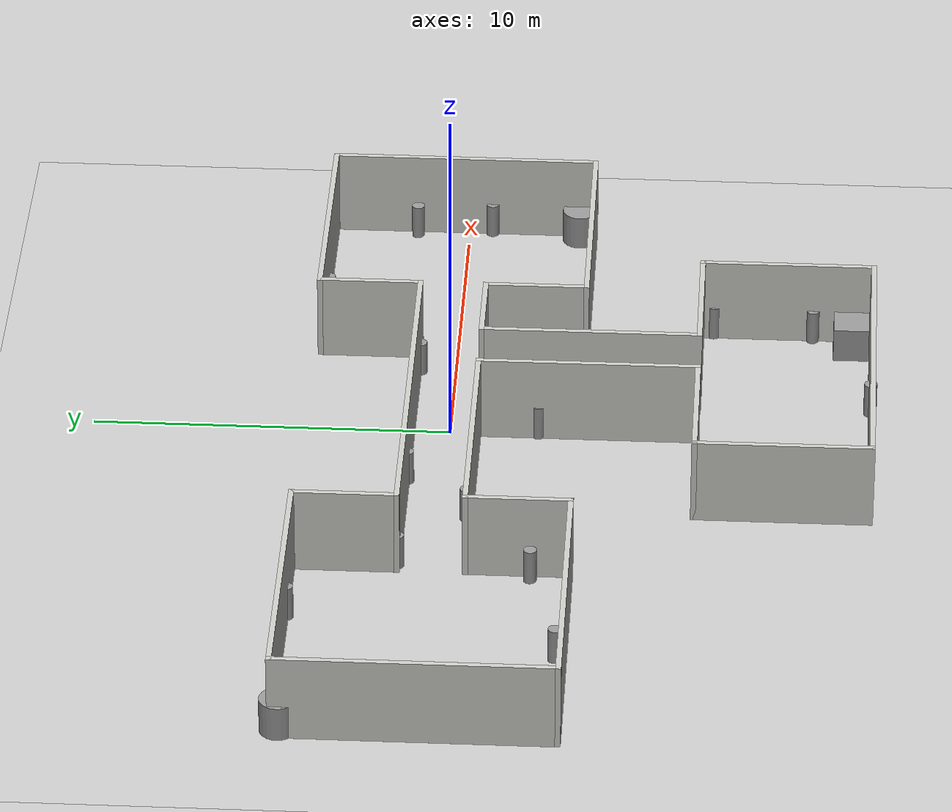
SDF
<sdf version="1.7">
 <world name="default">
  <light name="sun" type="directional">
   <pose>0 0 10 0 -0 0</pose>
   <diffuse>0.8 0.8 0.8 1</diffuse>
   <specular>0.2 0.2 0.2 1</specular>
   <attenuation>
    <range>1000</range>
    <constant>0.9</constant>
    <linear>0.01</linear>
    <quadratic>0.001</quadratic>
   </attenuation>
   <direction>-0.5 0.1 -0.9</direction>
   <spot><inner_angle>0</inner_angle><outer_angle>0</outer_angle><falloff>0</falloff></spot>
  </light>
  <model name="ground_plane">
   <static>1</static>
   <link name="link">
    <collision name="collision">
     <geometry><plane><normal>0 0 1</normal><size>100 100</size></plane></geometry>
     <surface><friction><ode><mu>100</mu><mu2>50</mu2></ode></friction></surface>
    </collision>
    <visual name="visual">
     <cast_shadows>0</cast_shadows>
     <geometry><plane><normal>0 0 1</normal><size>100 100</size></plane></geometry>
     <material>
      <script><uri>file://media/materials/scripts/gazebo.material</uri><name>Gazebo/Grey</name></script>
     </material>
    </visual>
   </link>
  </model>
  <gravity>0 0 -9.8</gravity>
  <magnetic_field>6e-06 2.3e-05 -4.2e-05</magnetic_field>
  <atmosphere type="adiabatic"/>
  <physics type="ode">
   <max_step_size>0.001</max_step_size>
   <real_time_factor>1</real_time_factor>
   <real_time_update_rate>1000</real_time_update_rate>
  </physics>
  <scene><ambient>0.4 0.4 0.4 1</ambient><background>0.7 0.7 0.7 1</background><shadows>1</shadows></scene>
  <audio><device>default</device></audio>
  <spherical_coordinates>
   <surface_model>EARTH_WGS84</surface_model>
   <latitude_deg>0</latitude_deg>
   <longitude_deg>0</longitude_deg>
   <elevation>0</elevation>
   <heading_deg>0</heading_deg>
  </spherical_coordinates>
  <model name="Prueba_1">
   <pose>-1.99357 -3.9035 0 0 -0 0</pose>
   <link name="Wall_12">
    <collision name="Wall_12_Collision">
     <geometry><box><size>2.5 0.15 2.5</size></box></geometry>
     <pose>0 0 1.25 0 -0 0</pose>
    </collision>
    <visual name="Wall_12_Visual">
     <pose>0 0 1.25 0 -0 0</pose>
     <geometry><box><size>2.5 0.15 2.5</size></box></geometry>
     <material>
      <script><uri>file://media/materials/scripts/gazebo.material</uri><name>Gazebo/CeilingTiled</name></script>
      <ambient>0.207843 0.517647 0.894118 1</ambient>
     </material>
     <meta><layer>0</layer></meta>
    </visual>
    <pose>4.75 3.125 0 0 -0 3.14159</pose>
   </link>
   <link name="Wall_14">
    <collision name="Wall_14_Collision">
     <geometry><box><size>7 0.15 2.5</size></box></geometry>
     <pose>0 0 1.25 0 -0 0</pose>
    </collision>
    <visual name="Wall_14_Visual">
     <pose>0 0 1.25 0 -0 0</pose>
     <geometry><box><size>7 0.15 2.5</size></box></geometry>
     <material>
      <script><uri>file://media/materials/scripts/gazebo.material</uri><name>Gazebo/CeilingTiled</name></script>
      <ambient>0.207843 0.517647 0.894118 1</ambient>
     </material>
     <meta><layer>0</layer></meta>
    </visual>
    <pose>-1.5 3.125 0 0 -0 3.14159</pose>
   </link>
   <link name="Wall_30">
    <collision name="Wall_30_Collision">
     <geometry><box><size>3 0.15 2.5</size></box></geometry>
     <pose>0 0 1.25 0 -0 0</pose>
    </collision>
    <visual name="Wall_30_Visual">
     <pose>0 0 1.25 0 -0 0</pose>
     <geometry><box><size>3 0.15 2.5</size></box></geometry>
     <material>
      <script><uri>file://media/materials/scripts/gazebo.material</uri><name>Gazebo/CeilingTiled</name></script>
      <ambient>0.207843 0.517647 0.894118 1</ambient>
     </material>
     <meta><layer>0</layer></meta>
    </visual>
    <pose>-4.925 1.7 0 0 -0 -1.5708</pose>
   </link>
   <link name="Wall_32">
    <collision name="Wall_32_Collision">
     <geometry><box><size>3 0.15 2.5</size></box></geometry>
     <pose>0 0 1.25 0 -0 0</pose>
    </collision>
    <visual name="Wall_32_Visual">
     <pose>0 0 1.25 0 -0 0</pose>
     <geometry><box><size>3 0.15 2.5</size></box></geometry>
     <material>
      <script><uri>file://media/materials/scripts/gazebo.material</uri><name>Gazebo/CeilingTiled</name></script>
      <ambient>0.207843 0.517647 0.894118 1</ambient>
     </material>
     <meta><layer>0</layer></meta>
    </visual>
    <pose>-4.925 6.4 0 0 -0 1.5708</pose>
   </link>
   <link name="Wall_34">
    <collision name="Wall_34_Collision">
     <geometry><box><size>8 0.15 2.5</size></box></geometry>
     <pose>0 0 1.25 0 -0 0</pose>
    </collision>
    <visual name="Wall_34_Visual">
     <pose>0 0 1.25 0 -0 0</pose>
     <geometry><box><size>8 0.15 2.5</size></box></geometry>
     <material>
      <script><uri>file://media/materials/scripts/gazebo.material</uri><name>Gazebo/CeilingTiled</name></script>
      <ambient>0.207843 0.517647 0.894118 1</ambient>
     </material>
     <meta><layer>0</layer></meta>
    </visual>
    <pose>-8.85 7.825 0 0 -0 3.14159</pose>
   </link>
   <link name="Wall_36">
    <collision name="Wall_36_Collision">
     <geometry><box><size>8 0.15 2.5</size></box></geometry>
     <pose>0 0 1.25 0 -0 0</pose>
    </collision>
    <visual name="Wall_36_Visual">
     <pose>0 0 1.25 0 -0 0</pose>
     <geometry><box><size>8 0.15 2.5</size></box></geometry>
     <material>
      <script><uri>file://media/materials/scripts/gazebo.material</uri><name>Gazebo/CeilingTiled</name></script>
      <ambient>0.207843 0.517647 0.894118 1</ambient>
     </material>
     <meta><layer>0</layer></meta>
    </visual>
    <pose>-8.85 0.275 0 0 -0 3.14159</pose>
   </link>
   <link name="Wall_37">
    <collision name="Wall_37_Collision">
     <geometry><box><size>7.7 0.15 2.5</size></box></geometry>
     <pose>0 0 1.25 0 -0 0</pose>
    </collision>
    <visual name="Wall_37_Visual">
     <pose>0 0 1.25 0 -0 0</pose>
     <geometry><box><size>7.7 0.15 2.5</size></box></geometry>
     <material>
      <script><uri>file://media/materials/scripts/gazebo.material</uri><name>Gazebo/CeilingTiled</name></script>
      <ambient>0.207843 0.517647 0.894118 1</ambient>
     </material>
     <meta><layer>0</layer></meta>
    </visual>
    <pose>-12.775 4.05 0 0 -0 1.5708</pose>
   </link>
   <link name="Wall_41">
    <collision name="Wall_41_Collision">
     <geometry><box><size>3 0.15 2.5</size></box></geometry>
     <pose>0 0 1.25 0 -0 0</pose>
    </collision>
    <visual name="Wall_41_Visual">
     <pose>0 0 1.25 0 -0 0</pose>
     <geometry><box><size>3 0.15 2.5</size></box></geometry>
     <material>
      <script><uri>file://media/materials/scripts/gazebo.material</uri><name>Gazebo/CeilingTiled</name></script>
      <ambient>0.207843 0.517647 0.894118 1</ambient>
     </material>
     <meta><layer>0</layer></meta>
    </visual>
    <pose>5.925 1.7 0 0 -0 1.5708</pose>
   </link>
   <link name="Wall_44">
    <collision name="Wall_44_Collision">
     <geometry><box><size>3 0.15 2.5</size></box></geometry>
     <pose>0 0 1.25 0 -0 0</pose>
    </collision>
    <visual name="Wall_44_Visual">
     <pose>0 0 1.25 0 -0 0</pose>
     <geometry><box><size>3 0.15 2.5</size></box></geometry>
     <material>
      <script><uri>file://media/materials/scripts/gazebo.material</uri><name>Gazebo/CeilingTiled</name></script>
      <ambient>0.207843 0.517647 0.894118 1</ambient>
     </material>
     <meta><layer>0</layer></meta>
    </visual>
    <pose>5.925 6.4 0 0 -0 -1.5708</pose>
   </link>
   <link name="Wall_46">
    <collision name="Wall_46_Collision">
     <geometry><box><size>7 0.15 2.5</size></box></geometry>
     <pose>0 0 1.25 0 -0 0</pose>
    </collision>
    <visual name="Wall_46_Visual">
     <pose>0 0 1.25 0 -0 0</pose>
     <geometry><box><size>7 0.15 2.5</size></box></geometry>
     <material>
      <script><uri>file://media/materials/scripts/gazebo.material</uri><name>Gazebo/CeilingTiled</name></script>
      <ambient>0.207843 0.517647 0.894118 1</ambient>
     </material>
     <meta><layer>0</layer></meta>
    </visual>
    <pose>9.35 7.825 0 0 -0 0</pose>
   </link>
   <link name="Wall_49">
    <collision name="Wall_49_Collision">
     <geometry><box><size>7 0.15 2.5</size></box></geometry>
     <pose>0 0 1.25 0 -0 0</pose>
    </collision>
    <visual name="Wall_49_Visual">
     <pose>0 0 1.25 0 -0 0</pose>
     <geometry><box><size>7 0.15 2.5</size></box></geometry>
     <material>
      <script><uri>file://media/materials/scripts/gazebo.material</uri><name>Gazebo/CeilingTiled</name></script>
      <ambient>0.207843 0.517647 0.894118 1</ambient>
     </material>
     <meta><layer>0</layer></meta>
    </visual>
    <pose>9.35 0.275 0 0 -0 0</pose>
   </link>
   <link name="Wall_50">
    <collision name="Wall_50_Collision">
     <geometry><box><size>7.7 0.15 2.5</size></box></geometry>
     <pose>0 0 1.25 0 -0 0</pose>
    </collision>
    <visual name="Wall_50_Visual">
     <pose>0 0 1.25 0 -0 0</pose>
     <geometry><box><size>7.7 0.15 2.5</size></box></geometry>
     <material>
      <script><uri>file://media/materials/scripts/gazebo.material</uri><name>Gazebo/CeilingTiled</name></script>
      <ambient>0.207843 0.517647 0.894118 1</ambient>
     </material>
     <meta><layer>0</layer></meta>
    </visual>
    <pose>12.775 4.05 0 0 -0 1.5708</pose>
   </link>
   <link name="Wall_52">
    <collision name="Wall_52_Collision">
     <geometry><box><size>6.25 0.15 2.5</size></box></geometry>
     <pose>0 0 1.25 0 -0 0</pose>
    </collision>
    <visual name="Wall_52_Visual">
     <pose>0 0 1.25 0 -0 0</pose>
     <geometry><box><size>6.25 0.15 2.5</size></box></geometry>
     <material>
      <script><uri>file://media/materials/scripts/gazebo.material</uri><name>Gazebo/CeilingTiled</name></script>
      <ambient>0.207843 0.517647 0.894118 1</ambient>
     </material>
     <meta><layer>0</layer></meta>
    </visual>
    <pose>1.925 0.075 0 0 -0 -1.5708</pose>
   </link>
   <link name="Wall_54">
    <collision name="Wall_54_Collision">
     <geometry><box><size>6.25 0.15 2.5</size></box></geometry>
     <pose>0 0 1.25 0 -0 0</pose>
    </collision>
    <visual name="Wall_54_Visual">
     <pose>0 0 1.25 0 -0 0</pose>
     <geometry><box><size>6.25 0.15 2.5</size></box></geometry>
     <material>
      <script><uri>file://media/materials/scripts/gazebo.material</uri><name>Gazebo/CeilingTiled</name></script>
      <ambient>0.207843 0.517647 0.894118 1</ambient>
     </material>
     <meta><layer>0</layer></meta>
    </visual>
    <pose>3.575 0.075 0 0 -0 -1.5708</pose>
   </link>
   <link name="Wall_56">
    <collision name="Wall_56_Collision">
     <geometry><box><size>4 0.15 2.5</size></box></geometry>
     <pose>0 0 1.25 0 -0 0</pose>
    </collision>
    <visual name="Wall_56_Visual">
     <pose>0 0 1.25 0 -0 0</pose>
     <geometry><box><size>4 0.15 2.5</size></box></geometry>
     <material>
      <script><uri>file://media/materials/scripts/gazebo.material</uri><name>Gazebo/CeilingTiled</name></script>
      <ambient>0.207843 0.517647 0.894118 1</ambient>
     </material>
     <meta><layer>0</layer></meta>
    </visual>
    <pose>0 -2.975 0 0 -0 3.14159</pose>
   </link>
   <link name="Wall_58">
    <collision name="Wall_58_Collision">
     <geometry><box><size>4 0.15 2.5</size></box></geometry>
     <pose>0 0 1.25 0 -0 0</pose>
    </collision>
    <visual name="Wall_58_Visual">
     <pose>0 0 1.25 0 -0 0</pose>
     <geometry><box><size>4 0.15 2.5</size></box></geometry>
     <material>
      <script><uri>file://media/materials/scripts/gazebo.material</uri><name>Gazebo/CeilingTiled</name></script>
      <ambient>0.207843 0.517647 0.894118 1</ambient>
     </material>
     <meta><layer>0</layer></meta>
    </visual>
    <pose>5.5 -2.975 0 0 -0 0</pose>
   </link>
   <link name="Wall_62">
    <collision name="Wall_62_Collision">
     <geometry><box><size>5 0.15 2.5</size></box></geometry>
     <pose>0 0 1.25 0 -0 0</pose>
    </collision>
    <visual name="Wall_62_Visual">
     <pose>0 0 1.25 0 -0 0</pose>
     <geometry><box><size>5 0.15 2.5</size></box></geometry>
     <material>
      <script><uri>file://media/materials/scripts/gazebo.material</uri><name>Gazebo/CeilingTiled</name></script>
      <ambient>0.207843 0.517647 0.894118 1</ambient>
     </material>
     <meta><layer>0</layer></meta>
    </visual>
    <pose>-1.925 -5.4 0 0 -0 -1.5708</pose>
   </link>
   <link name="Wall_63">
    <collision name="Wall_63_Collision">
     <geometry><box><size>9.5 0.15 2.5</size></box></geometry>
     <pose>0 0 1.25 0 -0 0</pose>
    </collision>
    <visual name="Wall_63_Visual">
     <pose>0 0 1.25 0 -0 0</pose>
     <geometry><box><size>9.5 0.15 2.5</size></box></geometry>
     <material>
      <script><uri>file://media/materials/scripts/gazebo.material</uri><name>Gazebo/CeilingTiled</name></script>
      <ambient>0.207843 0.517647 0.894118 1</ambient>
     </material>
     <meta><layer>0</layer></meta>
    </visual>
    <pose>2.75 -7.825 0 0 -0 0</pose>
   </link>
   <link name="Wall_64">
    <collision name="Wall_64_Collision">
     <geometry><box><size>5 0.15 2.5</size></box></geometry>
     <pose>0 0 1.25 0 -0 0</pose>
    </collision>
    <visual name="Wall_64_Visual">
     <pose>0 0 1.25 0 -0 0</pose>
     <geometry><box><size>5 0.15 2.5</size></box></geometry>
     <material>
      <script><uri>file://media/materials/scripts/gazebo.material</uri><name>Gazebo/CeilingTiled</name></script>
      <ambient>0.207843 0.517647 0.894118 1</ambient>
     </material>
     <meta><layer>0</layer></meta>
    </visual>
    <pose>7.425 -5.4 0 0 -0 1.5708</pose>
   </link>
   <link name="Wall_9">
    <collision name="Wall_9_Collision">
     <geometry><box><size>11 0.15 2.5</size></box></geometry>
     <pose>0 0 1.25 0 -0 0</pose>
    </collision>
    <visual name="Wall_9_Visual">
     <pose>0 0 1.25 0 -0 0</pose>
     <geometry><box><size>11 0.15 2.5</size></box></geometry>
     <material>
      <script><uri>file://media/materials/scripts/gazebo.material</uri><name>Gazebo/CeilingTiled</name></script>
      <ambient>0.207843 0.517647 0.894118 1</ambient>
     </material>
     <meta><layer>0</layer></meta>
    </visual>
    <pose>0.5 4.975 0 0 -0 0</pose>
   </link>
   <static>1</static>
  </model>
  <model name="unit_cylinder">
   <pose>1.50224 -5.64337 0.499991 0 -0 -0.001384</pose>
   <link name="link">
    <inertial>
     <mass>1</mass>
     <inertia><ixx>0.145833</ixx><ixy>0</ixy><ixz>0</ixz><iyy>0.145833</iyy><iyz>0</iyz><izz>0.125</izz></inertia>
    </inertial>
    <collision name="collision">
     <geometry><cylinder><radius>0.179113</radius><length>1</length></cylinder></geometry>
    </collision>
    <visual name="visual">
     <geometry><cylinder><radius>0.179113</radius><length>1</length></cylinder></geometry>
     <material>
      <script><name>Gazebo/Grey</name><uri>file://media/materials/scripts/gazebo.material</uri></script>
     </material>
    </visual>
   </link>
  </model>
  <model name="unit_cylinder_clone">
   <pose>-0.022547 -2.46096 0.499999 0 0 -0.001389</pose>
   <link name="link">
    <inertial>
     <mass>1</mass>
     <inertia><ixx>0.145833</ixx><ixy>0</ixy><ixz>0</ixz><iyy>0.145833</iyy><iyz>0</iyz><izz>0.125</izz></inertia>
    </inertial>
    <collision name="collision">
     <geometry><cylinder><radius>0.179113</radius><length>1</length></cylinder></geometry>
    </collision>
    <visual name="visual">
     <geometry><cylinder><radius>0.179113</radius><length>1</length></cylinder></geometry>
     <material>
      <script><name>Gazebo/Grey</name><uri>file://media/materials/scripts/gazebo.material</uri></script>
     </material>
    </visual>
   </link>
  </model>
  <model name="unit_cylinder_clone_0">
   <pose>0.185546 -4.44262 0.5 0 0 -0.001384</pose>
   <link name="link">
    <inertial>
     <mass>1</mass>
     <inertia><ixx>0.145833</ixx><ixy>0</ixy><ixz>0</ixz><iyy>0.145833</iyy><iyz>0</iyz><izz>0.125</izz></inertia>
    </inertial>
    <collision name="collision">
     <geometry><cylinder><radius>0.179113</radius><length>1</length></cylinder></geometry>
    </collision>
    <visual name="visual">
     <geometry><cylinder><radius>0.179113</radius><length>1</length></cylinder></geometry>
     <material>
      <script><name>Gazebo/Grey</name><uri>file://media/materials/scripts/gazebo.material</uri></script>
     </material>
    </visual>
   </link>
  </model>
  <model name="unit_box">
   <pose>-3.33928 -11.1518 0.499995 -1e-05 -0 0.003229</pose>
   <link name="link">
    <inertial>
     <mass>1</mass>
     <inertia>
      <ixx>0.166667</ixx>
      <ixy>0</ixy>
      <ixz>0</ixz>
      <iyy>0.166667</iyy>
      <iyz>0</iyz>
      <izz>0.166667</izz>
     </inertia>
    </inertial>
    <collision name="collision"><geometry><box><size>1 1 1</size></box></geometry></collision>
    <visual name="visual">
     <geometry><box><size>1 1 1</size></box></geometry>
     <material>
      <script><name>Gazebo/Grey</name><uri>file://media/materials/scripts/gazebo.material</uri></script>
     </material>
    </visual>
   </link>
  </model>
  <model name="unit_cylinder_clone_0_clone">
   <pose>3.0973 1.01354 0.499991 0 -0 -0.001383</pose>
   <link name="link">
    <inertial>
     <mass>1</mass>
     <inertia><ixx>0.145833</ixx><ixy>0</ixy><ixz>0</ixz><iyy>0.145833</iyy><iyz>0</iyz><izz>0.125</izz></inertia>
    </inertial>
    <collision name="collision">
     <geometry><cylinder><radius>0.179113</radius><length>1</length></cylinder></geometry>
    </collision>
    <visual name="visual">
     <geometry><cylinder><radius>0.179113</radius><length>1</length></cylinder></geometry>
     <material>
      <script><name>Gazebo/Grey</name><uri>file://media/materials/scripts/gazebo.material</uri></script>
     </material>
    </visual>
   </link>
  </model>
  <model name="unit_cylinder_clone_0_clone_0">
   <pose>-4.29988 -0.677964 0.499999 0 0 -0.001384</pose>
   <link name="link">
    <inertial>
     <mass>1</mass>
     <inertia><ixx>0.145833</ixx><ixy>0</ixy><ixz>0</ixz><iyy>0.145833</iyy><iyz>0</iyz><izz>0.125</izz></inertia>
    </inertial>
    <collision name="collision">
     <geometry><cylinder><radius>0.179113</radius><length>1</length></cylinder></geometry>
    </collision>
    <visual name="visual">
     <geometry><cylinder><radius>0.179113</radius><length>1</length></cylinder></geometry>
     <material>
      <script><name>Gazebo/Grey</name><uri>file://media/materials/scripts/gazebo.material</uri></script>
     </material>
    </visual>
   </link>
  </model>
  <model name="unit_cylinder_clone_0_clone_1">
   <pose>-2.51695 1.05276 0.499991 0 -0 -0.001384</pose>
   <link name="link">
    <inertial>
     <mass>1</mass>
     <inertia><ixx>0.145833</ixx><ixy>0</ixy><ixz>0</ixz><iyy>0.145833</iyy><iyz>0</iyz><izz>0.125</izz></inertia>
    </inertial>
    <collision name="collision">
     <geometry><cylinder><radius>0.179113</radius><length>1</length></cylinder></geometry>
    </collision>
    <visual name="visual">
     <geometry><cylinder><radius>0.179113</radius><length>1</length></cylinder></geometry>
     <material>
      <script><name>Gazebo/Grey</name><uri>file://media/materials/scripts/gazebo.material</uri></script>
     </material>
    </visual>
   </link>
  </model>
  <model name="unit_cylinder_clone_0_clone_2">
   <pose>-6.66445 1.06878 0.5 0 0 -0.001385</pose>
   <link name="link">
    <inertial>
     <mass>1</mass>
     <inertia><ixx>0.145833</ixx><ixy>0</ixy><ixz>0</ixz><iyy>0.145833</iyy><iyz>0</iyz><izz>0.125</izz></inertia>
    </inertial>
    <collision name="collision">
     <geometry><cylinder><radius>0.179113</radius><length>1</length></cylinder></geometry>
    </collision>
    <visual name="visual">
     <geometry><cylinder><radius>0.179113</radius><length>1</length></cylinder></geometry>
     <material>
      <script><name>Gazebo/Grey</name><uri>file://media/materials/scripts/gazebo.material</uri></script>
     </material>
    </visual>
   </link>
  </model>
  <model name="unit_cylinder_clone_0_clone_3">
   <pose>-9.26711 3.89131 0.499999 0 0 -0.001384</pose>
   <link name="link">
    <inertial>
     <mass>1</mass>
     <inertia><ixx>0.145833</ixx><ixy>0</ixy><ixz>0</ixz><iyy>0.145833</iyy><iyz>0</iyz><izz>0.125</izz></inertia>
    </inertial>
    <collision name="collision">
     <geometry><cylinder><radius>0.179113</radius><length>1</length></cylinder></geometry>
    </collision>
    <visual name="visual">
     <geometry><cylinder><radius>0.179113</radius><length>1</length></cylinder></geometry>
     <material>
      <script><name>Gazebo/Grey</name><uri>file://media/materials/scripts/gazebo.material</uri></script>
     </material>
    </visual>
   </link>
  </model>
  <model name="unit_cylinder_clone_0_clone_4">
   <pose>-7.17268 -2.55187 0.5 0 0 -0.001378</pose>
   <link name="link">
    <inertial>
     <mass>1</mass>
     <inertia><ixx>0.145833</ixx><ixy>0</ixy><ixz>0</ixz><iyy>0.145833</iyy><iyz>0</iyz><izz>0.125</izz></inertia>
    </inertial>
    <collision name="collision">
     <geometry><cylinder><radius>0.179113</radius><length>1</length></cylinder></geometry>
    </collision>
    <visual name="visual">
     <geometry><cylinder><radius>0.179113</radius><length>1</length></cylinder></geometry>
     <material>
      <script><name>Gazebo/Grey</name><uri>file://media/materials/scripts/gazebo.material</uri></script>
     </material>
    </visual>
   </link>
  </model>
  <model name="unit_cylinder_clone_0_clone_5">
   <pose>-14.5144 -1.55726 0.499994 0 -0 -0.001385</pose>
   <link name="link">
    <inertial>
     <mass>1</mass>
     <inertia><ixx>0.145833</ixx><ixy>0</ixy><ixz>0</ixz><iyy>0.145833</iyy><iyz>0</iyz><izz>0.125</izz></inertia>
    </inertial>
    <collision name="collision">
     <geometry><cylinder><radius>0.179113</radius><length>1</length></cylinder></geometry>
    </collision>
    <visual name="visual">
     <geometry><cylinder><radius>0.179113</radius><length>1</length></cylinder></geometry>
     <material>
      <script><name>Gazebo/Grey</name><uri>file://media/materials/scripts/gazebo.material</uri></script>
     </material>
    </visual>
   </link>
  </model>
  <model name="unit_cylinder_1">
   <pose>-14.4584 3.72994 0.499998 3e-06 -3e-06 0</pose>
   <link name="link">
    <inertial>
     <mass>1</mass>
     <inertia><ixx>0.145833</ixx><ixy>0</ixy><ixz>0</ixz><iyy>0.145833</iyy><iyz>0</iyz><izz>0.125</izz></inertia>
    </inertial>
    <collision name="collision">
     <geometry><cylinder><radius>0.5</radius><length>1</length></cylinder></geometry>
    </collision>
    <visual name="visual">
     <geometry><cylinder><radius>0.5</radius><length>1</length></cylinder></geometry>
     <material>
      <script><name>Gazebo/Grey</name><uri>file://media/materials/scripts/gazebo.material</uri></script>
     </material>
    </visual>
   </link>
  </model>
  <model name="unit_cylinder_clone_0_clone_6">
   <pose>6.48396 3.85088 0.499999 0 0 -0.001384</pose>
   <link name="link">
    <inertial>
     <mass>1</mass>
     <inertia><ixx>0.145833</ixx><ixy>0</ixy><ixz>0</ixz><iyy>0.145833</iyy><iyz>0</iyz><izz>0.125</izz></inertia>
    </inertial>
    <collision name="collision">
     <geometry><cylinder><radius>0.179113</radius><length>1</length></cylinder></geometry>
    </collision>
    <visual name="visual">
     <geometry><cylinder><radius>0.179113</radius><length>1</length></cylinder></geometry>
     <material>
      <script><name>Gazebo/Grey</name><uri>file://media/materials/scripts/gazebo.material</uri></script>
     </material>
    </visual>
   </link>
  </model>
  <model name="unit_cylinder_0">
   <pose>10.5287 -3.20476 0.499998 3e-06 -3e-06 0</pose>
   <link name="link">
    <inertial>
     <mass>1</mass>
     <inertia><ixx>0.145833</ixx><ixy>0</ixy><ixz>0</ixz><iyy>0.145833</iyy><iyz>0</iyz><izz>0.125</izz></inertia>
    </inertial>
    <collision name="collision">
     <geometry><cylinder><radius>0.5</radius><length>1</length></cylinder></geometry>
    </collision>
    <visual name="visual">
     <geometry><cylinder><radius>0.5</radius><length>1</length></cylinder></geometry>
     <material>
      <script><name>Gazebo/Grey</name><uri>file://media/materials/scripts/gazebo.material</uri></script>
     </material>
    </visual>
   </link>
  </model>
  <model name="unit_cylinder_clone_0_clone_7">
   <pose>10.5273 1.5278 0.499991 -0 -0 -0.001383</pose>
   <link name="link">
    <inertial>
     <mass>1</mass>
     <inertia><ixx>0.145833</ixx><ixy>0</ixy><ixz>0</ixz><iyy>0.145833</iyy><iyz>0</iyz><izz>0.125</izz></inertia>
    </inertial>
    <collision name="collision">
     <geometry><cylinder><radius>0.179113</radius><length>1</length></cylinder></geometry>
    </collision>
    <visual name="visual">
     <geometry><cylinder><radius>0.179113</radius><length>1</length></cylinder></geometry>
     <material>
      <script><name>Gazebo/Grey</name><uri>file://media/materials/scripts/gazebo.material</uri></script>
     </material>
    </visual>
   </link>
  </model>
  <model name="unit_cylinder_clone_0_clone_8">
   <pose>10.7118 -0.644601 0.499991 0 -0 -0.001385</pose>
   <link name="link">
    <inertial>
     <mass>1</mass>
     <inertia><ixx>0.145833</ixx><ixy>0</ixy><ixz>0</ixz><iyy>0.145833</iyy><iyz>0</iyz><izz>0.125</izz></inertia>
    </inertial>
    <collision name="collision">
     <geometry><cylinder><radius>0.179113</radius><length>1</length></cylinder></geometry>
    </collision>
    <visual name="visual">
     <geometry><cylinder><radius>0.179113</radius><length>1</length></cylinder></geometry>
     <material>
      <script><name>Gazebo/Grey</name><uri>file://media/materials/scripts/gazebo.material</uri></script>
     </material>
    </visual>
   </link>
  </model>
  <model name="unit_cylinder_clone_0_clone_9">
   <pose>5.38004 -10.0452 0.5 0 0 -0.001384</pose>
   <link name="link">
    <inertial>
     <mass>1</mass>
     <inertia><ixx>0.145833</ixx><ixy>0</ixy><ixz>0</ixz><iyy>0.145833</iyy><iyz>0</iyz><izz>0.125</izz></inertia>
    </inertial>
    <collision name="collision">
     <geometry><cylinder><radius>0.179113</radius><length>1</length></cylinder></geometry>
    </collision>
    <visual name="visual">
     <geometry><cylinder><radius>0.179113</radius><length>1</length></cylinder></geometry>
     <material>
      <script><name>Gazebo/Grey</name><uri>file://media/materials/scripts/gazebo.material</uri></script>
     </material>
    </visual>
   </link>
  </model>
  <model name="unit_cylinder_clone_0_clone_10">
   <pose>1.61857 -11.7026 0.499991 0 -0 -0.001384</pose>
   <link name="link">
    <inertial>
     <mass>1</mass>
     <inertia><ixx>0.145833</ixx><ixy>0</ixy><ixz>0</ixz><iyy>0.145833</iyy><iyz>0</iyz><izz>0.125</izz></inertia>
    </inertial>
    <collision name="collision">
     <geometry><cylinder><radius>0.179113</radius><length>1</length></cylinder></geometry>
    </collision>
    <visual name="visual">
     <geometry><cylinder><radius>0.179113</radius><length>1</length></cylinder></geometry>
     <material>
      <script><name>Gazebo/Grey</name><uri>file://media/materials/scripts/gazebo.material</uri></script>
     </material>
    </visual>
   </link>
  </model>
  <model name="unit_cylinder_clone_0_clone_11">
   <pose>5.4723 -7.22898 0.499999 0 0 -0.001384</pose>
   <link name="link">
    <inertial>
     <mass>1</mass>
     <inertia><ixx>0.145833</ixx><ixy>0</ixy><ixz>0</ixz><iyy>0.145833</iyy><iyz>0</iyz><izz>0.125</izz></inertia>
    </inertial>
    <collision name="collision">
     <geometry><cylinder><radius>0.179113</radius><length>1</length></cylinder></geometry>
    </collision>
    <visual name="visual">
     <geometry><cylinder><radius>0.179113</radius><length>1</length></cylinder></geometry>
     <material>
      <script><name>Gazebo/Grey</name><uri>file://media/materials/scripts/gazebo.material</uri></script>
     </material>
    </visual>
   </link>
  </model>
  <model name="unit_cylinder_clone_0_clone_12">
   <pose>-10.8749 -3.37438 0.499999 0 0 -0.001305</pose>
   <link name="link">
    <inertial>
     <mass>1</mass>
     <inertia><ixx>0.145833</ixx><ixy>0</ixy><ixz>0</ixz><iyy>0.145833</iyy><iyz>0</iyz><izz>0.125</izz></inertia>
    </inertial>
    <collision name="collision">
     <geometry><cylinder><radius>0.179113</radius><length>1</length></cylinder></geometry>
    </collision>
    <visual name="visual">
     <geometry><cylinder><radius>0.179113</radius><length>1</length></cylinder></geometry>
     <material>
      <script><name>Gazebo/Grey</name><uri>file://media/materials/scripts/gazebo.material</uri></script>
     </material>
    </visual>
   </link>
  </model>
  <model name="unit_box_0">
   <pose>4.85624 -11.142 0.499995 0 1e-05 0.000395</pose>
   <link name="link">
    <inertial>
     <mass>1</mass>
     <inertia>
      <ixx>0.166667</ixx>
      <ixy>0</ixy>
      <ixz>0</ixz>
      <iyy>0.166667</iyy>
      <iyz>0</iyz>
      <izz>0.166667</izz>
     </inertia>
    </inertial>
    <collision name="collision"><geometry><box><size>1 1 1</size></box></geometry></collision>
    <visual name="visual">
     <geometry><box><size>1 1 1</size></box></geometry>
     <material>
      <script><name>Gazebo/Grey</name><uri>file://media/materials/scripts/gazebo.material</uri></script>
     </material>
    </visual>
   </link>
  </model>
 </world>
</sdf>
